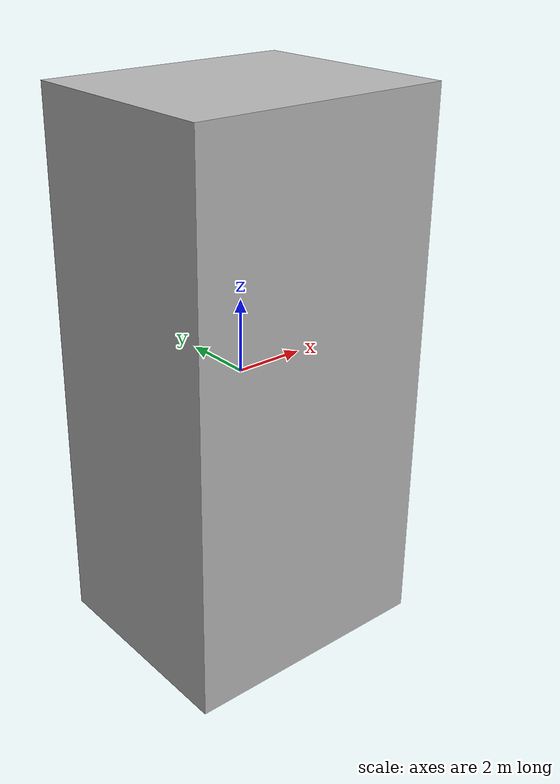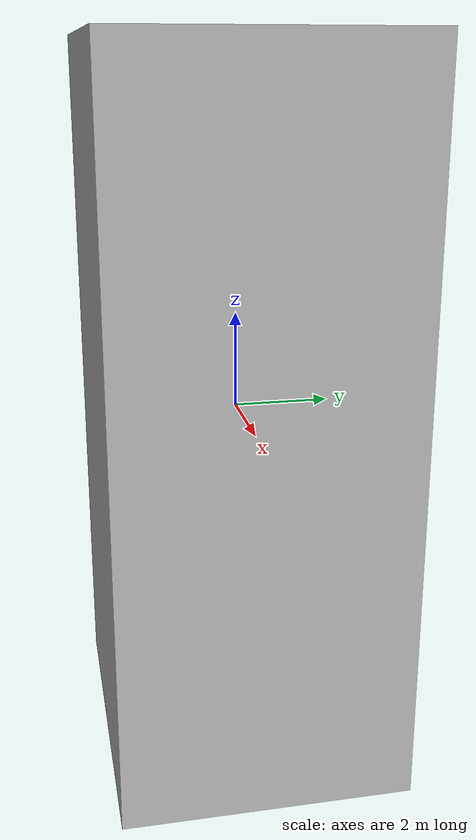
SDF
<sdf version='1.6'>
  <model name='box'>
    <link name='box'>
      <pose frame=''>0 0 0 0 -0 0</pose>
      <inertial>
        <pose frame=''>0 0 0 0 -0 0</pose>
        <mass>100</mass>
        <inertia>
          <ixx>1088</ixx>
          <ixy>0</ixy>
          <ixz>0</ixz>
          <iyy>550</iyy>
          <iyz>0</iyz>
          <izz>1088</izz>
        </inertia>
      </inertial>
      <collision name='box_collision'>
        <pose frame=''>0 0 0 0 -0 0</pose>
        <geometry>
          <box>
            <size>1 1 1</size>
          </box>
        </geometry>
      </collision>
      <visual name='box_visual'>
        <pose frame=''>0 0 0 0 -0 0</pose>
        <geometry>
          <mesh>
            <scale>6 6 10</scale>
            <uri>/home/prasun/Downloads/Test-Aerialist/Aerialist/aerialist/resources/simulation/models/big_box/meshes/big_box_.dae</uri>
          </mesh>
        </geometry>
      </visual>
    </link>
  </model>
</sdf>
